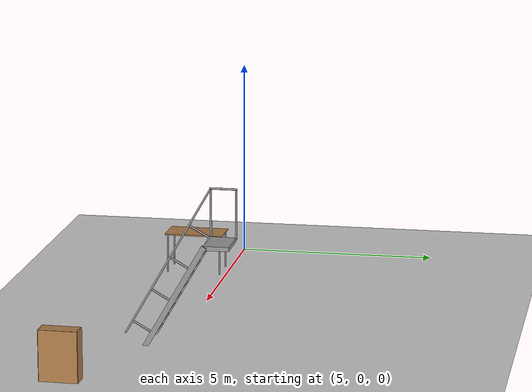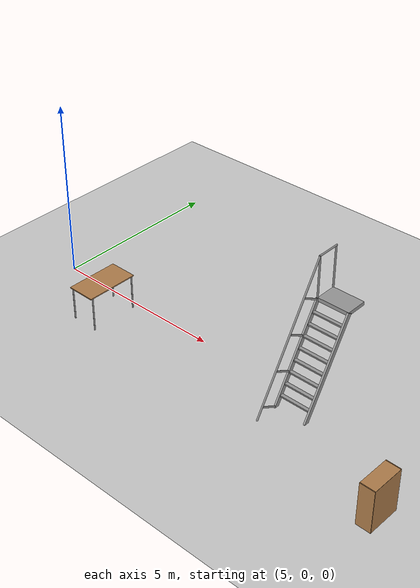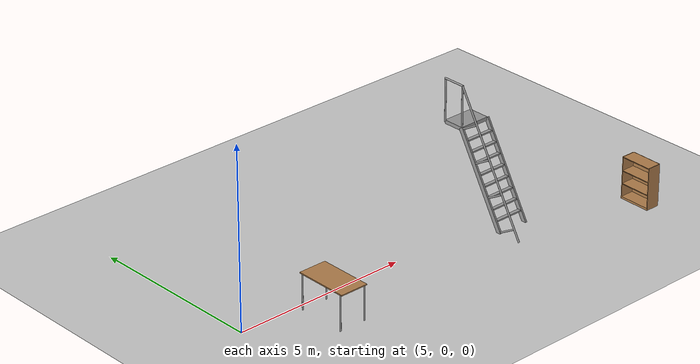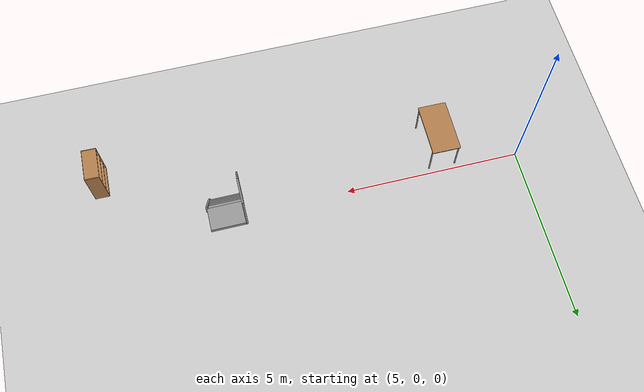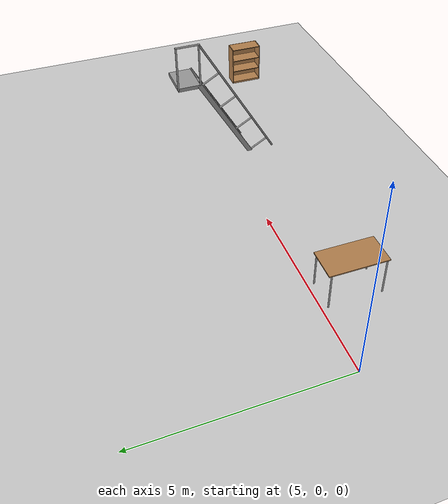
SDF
<sdf version="1.6">
 <world name="default">
  <model name="ground_plane">
   <static>1</static>
   <link name="link">
    <collision name="collision">
     <geometry><plane><normal>0 0 1</normal><size>100 100</size></plane></geometry>
     <surface><friction><ode><mu>100</mu><mu2>50</mu2></ode></friction></surface>
    </collision>
    <visual name="visual">
     <cast_shadows>0</cast_shadows>
     <geometry><plane><normal>0 0 1</normal><size>100 100</size></plane></geometry>
     <material>
      <script><uri>file://media/materials/scripts/gazebo.material</uri><name>Gazebo/Grey</name></script>
     </material>
    </visual>
   </link>
  </model>
  <model name="ladder_60deg_1rails">
   <static>1</static>
   <link name="step0">
    <pose>0 0.15396 0.266667 0 -0 0</pose>
    <inertial>
     <mass>9.75482</mass>
     <inertia>
      <ixx>0.00957124</ixx>
      <iyy>0.65963</iyy>
      <izz>0.666842</izz>
      <ixy>0</ixy>
      <ixz>0</ixz>
      <iyz>0</iyz>
     </inertia>
    </inertial>
    <collision name="collision"><geometry><box><size>0.9 0.1016 0.0381</size></box></geometry></collision>
    <visual name="visual">
     <geometry><box><size>0.9 0.1016 0.0381</size></box></geometry>
     <material>
      <script><uri>file://media/materials/scripts/gazebo.material</uri><name>Gazebo/Grey</name></script>
     </material>
    </visual>
   </link>
   <link name="step1">
    <pose>0 0.30792 0.533333 0 -0 0</pose>
    <inertial>
     <mass>9.75482</mass>
     <inertia>
      <ixx>0.00957124</ixx>
      <iyy>0.65963</iyy>
      <izz>0.666842</izz>
      <ixy>0</ixy>
      <ixz>0</ixz>
      <iyz>0</iyz>
     </inertia>
    </inertial>
    <collision name="collision"><geometry><box><size>0.9 0.1016 0.0381</size></box></geometry></collision>
    <visual name="visual">
     <geometry><box><size>0.9 0.1016 0.0381</size></box></geometry>
     <material>
      <script><uri>file://media/materials/scripts/gazebo.material</uri><name>Gazebo/Grey</name></script>
     </material>
    </visual>
   </link>
   <link name="step2">
    <pose>0 0.46188 0.8 0 -0 0</pose>
    <inertial>
     <mass>9.75482</mass>
     <inertia>
      <ixx>0.00957124</ixx>
      <iyy>0.65963</iyy>
      <izz>0.666842</izz>
      <ixy>0</ixy>
      <ixz>0</ixz>
      <iyz>0</iyz>
     </inertia>
    </inertial>
    <collision name="collision"><geometry><box><size>0.9 0.1016 0.0381</size></box></geometry></collision>
    <visual name="visual">
     <geometry><box><size>0.9 0.1016 0.0381</size></box></geometry>
     <material>
      <script><uri>file://media/materials/scripts/gazebo.material</uri><name>Gazebo/Grey</name></script>
     </material>
    </visual>
   </link>
   <link name="step3">
    <pose>0 0.61584 1.06667 0 -0 0</pose>
    <inertial>
     <mass>9.75482</mass>
     <inertia>
      <ixx>0.00957124</ixx>
      <iyy>0.65963</iyy>
      <izz>0.666842</izz>
      <ixy>0</ixy>
      <ixz>0</ixz>
      <iyz>0</iyz>
     </inertia>
    </inertial>
    <collision name="collision"><geometry><box><size>0.9 0.1016 0.0381</size></box></geometry></collision>
    <visual name="visual">
     <geometry><box><size>0.9 0.1016 0.0381</size></box></geometry>
     <material>
      <script><uri>file://media/materials/scripts/gazebo.material</uri><name>Gazebo/Grey</name></script>
     </material>
    </visual>
   </link>
   <link name="step4">
    <pose>0 0.7698 1.33333 0 -0 0</pose>
    <inertial>
     <mass>9.75482</mass>
     <inertia>
      <ixx>0.00957124</ixx>
      <iyy>0.65963</iyy>
      <izz>0.666842</izz>
      <ixy>0</ixy>
      <ixz>0</ixz>
      <iyz>0</iyz>
     </inertia>
    </inertial>
    <collision name="collision"><geometry><box><size>0.9 0.1016 0.0381</size></box></geometry></collision>
    <visual name="visual">
     <geometry><box><size>0.9 0.1016 0.0381</size></box></geometry>
     <material>
      <script><uri>file://media/materials/scripts/gazebo.material</uri><name>Gazebo/Grey</name></script>
     </material>
    </visual>
   </link>
   <link name="step5">
    <pose>0 0.92376 1.6 0 -0 0</pose>
    <inertial>
     <mass>9.75482</mass>
     <inertia>
      <ixx>0.00957124</ixx>
      <iyy>0.65963</iyy>
      <izz>0.666842</izz>
      <ixy>0</ixy>
      <ixz>0</ixz>
      <iyz>0</iyz>
     </inertia>
    </inertial>
    <collision name="collision"><geometry><box><size>0.9 0.1016 0.0381</size></box></geometry></collision>
    <visual name="visual">
     <geometry><box><size>0.9 0.1016 0.0381</size></box></geometry>
     <material>
      <script><uri>file://media/materials/scripts/gazebo.material</uri><name>Gazebo/Grey</name></script>
     </material>
    </visual>
   </link>
   <link name="step6">
    <pose>0 1.07772 1.86667 0 -0 0</pose>
    <inertial>
     <mass>9.75482</mass>
     <inertia>
      <ixx>0.00957124</ixx>
      <iyy>0.65963</iyy>
      <izz>0.666842</izz>
      <ixy>0</ixy>
      <ixz>0</ixz>
      <iyz>0</iyz>
     </inertia>
    </inertial>
    <collision name="collision"><geometry><box><size>0.9 0.1016 0.0381</size></box></geometry></collision>
    <visual name="visual">
     <geometry><box><size>0.9 0.1016 0.0381</size></box></geometry>
     <material>
      <script><uri>file://media/materials/scripts/gazebo.material</uri><name>Gazebo/Grey</name></script>
     </material>
    </visual>
   </link>
   <link name="step7">
    <pose>0 1.23168 2.13333 0 -0 0</pose>
    <inertial>
     <mass>9.75482</mass>
     <inertia>
      <ixx>0.00957124</ixx>
      <iyy>0.65963</iyy>
      <izz>0.666842</izz>
      <ixy>0</ixy>
      <ixz>0</ixz>
      <iyz>0</iyz>
     </inertia>
    </inertial>
    <collision name="collision"><geometry><box><size>0.9 0.1016 0.0381</size></box></geometry></collision>
    <visual name="visual">
     <geometry><box><size>0.9 0.1016 0.0381</size></box></geometry>
     <material>
      <script><uri>file://media/materials/scripts/gazebo.material</uri><name>Gazebo/Grey</name></script>
     </material>
    </visual>
   </link>
   <link name="landing">
    <pose>0 1.68564 2.4 0 -0 0</pose>
    <inertial>
     <mass>57.6072</mass>
     <inertia><ixx>1.73518</ixx><iyy>3.89545</iyy><izz>5.6167</izz><ixy>0</ixy><ixz>0</ixz><iyz>0</iyz></inertia>
    </inertial>
    <collision name="collision"><geometry><box><size>0.9 0.6 0.1016</size></box></geometry></collision>
    <visual name="visual">
     <geometry><box><size>0.9 0.6 0.1016</size></box></geometry>
     <material>
      <script><uri>file://media/materials/scripts/gazebo.material</uri><name>Gazebo/Grey</name></script>
     </material>
    </visual>
   </link>
   <link name="left_side_wall">
    <pose>-0.45 0.69282 1.2 1.0472 -0 0</pose>
    <collision name="collision"><geometry><box><size>0.0508 2.85128 0.13</size></box></geometry></collision>
    <visual name="visual">
     <geometry><box><size>0.0508 2.85128 0.13</size></box></geometry>
     <material>
      <script><uri>file://media/materials/scripts/gazebo.material</uri><name>Gazebo/Grey</name></script>
     </material>
    </visual>
   </link>
   <link name="right_side_wall">
    <pose>0.45 0.69282 1.2 1.0472 -0 0</pose>
    <collision name="collision"><geometry><box><size>0.0508 2.85128 0.13</size></box></geometry></collision>
    <visual name="visual">
     <geometry><box><size>0.0508 2.85128 0.13</size></box></geometry>
     <material>
      <script><uri>file://media/materials/scripts/gazebo.material</uri><name>Gazebo/Grey</name></script>
     </material>
    </visual>
   </link>
   <link name="left_railing_long">
    <pose>-0.45 0.34282 1.80622 -0.523599 0 0</pose>
    <collision name="collision">
     <geometry><cylinder><radius>0.02413</radius><length>4.17128</length></cylinder></geometry>
    </collision>
    <visual name="visual">
     <geometry><cylinder><radius>0.02413</radius><length>4.17128</length></cylinder></geometry>
     <material>
      <script><uri>file://media/materials/scripts/gazebo.material</uri><name>Gazebo/Grey</name></script>
     </material>
    </visual>
   </link>
   <link name="left_railing_upright0">
    <pose>-0.45 -0.274963 0.15875 1.0472 -0 0</pose>
    <collision name="collision">
     <geometry><cylinder><radius>0.02413</radius><length>0.541218</length></cylinder></geometry>
    </collision>
    <visual name="visual">
     <geometry><cylinder><radius>0.02413</radius><length>0.541218</length></cylinder></geometry>
     <material>
      <script><uri>file://media/materials/scripts/gazebo.material</uri><name>Gazebo/Grey</name></script>
     </material>
    </visual>
   </link>
   <link name="left_railing_upright1">
    <pose>-0.45 0.186917 0.95875 1.0472 -0 0</pose>
    <collision name="collision">
     <geometry><cylinder><radius>0.02413</radius><length>0.541218</length></cylinder></geometry>
    </collision>
    <visual name="visual">
     <geometry><cylinder><radius>0.02413</radius><length>0.541218</length></cylinder></geometry>
     <material>
      <script><uri>file://media/materials/scripts/gazebo.material</uri><name>Gazebo/Grey</name></script>
     </material>
    </visual>
   </link>
   <link name="left_railing_upright2">
    <pose>-0.45 0.648797 1.75875 1.0472 -0 0</pose>
    <collision name="collision">
     <geometry><cylinder><radius>0.02413</radius><length>0.541218</length></cylinder></geometry>
    </collision>
    <visual name="visual">
     <geometry><cylinder><radius>0.02413</radius><length>0.541218</length></cylinder></geometry>
     <material>
      <script><uri>file://media/materials/scripts/gazebo.material</uri><name>Gazebo/Grey</name></script>
     </material>
    </visual>
   </link>
   <link name="left_railing_upright3">
    <pose>-0.45 1.11068 2.55875 1.0472 -0 0</pose>
    <collision name="collision">
     <geometry><cylinder><radius>0.02413</radius><length>0.541218</length></cylinder></geometry>
    </collision>
    <visual name="visual">
     <geometry><cylinder><radius>0.02413</radius><length>0.541218</length></cylinder></geometry>
     <material>
      <script><uri>file://media/materials/scripts/gazebo.material</uri><name>Gazebo/Grey</name></script>
     </material>
    </visual>
   </link>
   <link name="left_railing_landing_top">
    <pose>-0.45 1.68564 3.61244 1.5708 -0 0</pose>
    <collision name="collision">
     <geometry><cylinder><radius>0.02413</radius><length>0.64826</length></cylinder></geometry>
    </collision>
    <visual name="visual">
     <geometry><cylinder><radius>0.02413</radius><length>0.64826</length></cylinder></geometry>
     <material>
      <script><uri>file://media/materials/scripts/gazebo.material</uri><name>Gazebo/Grey</name></script>
     </material>
    </visual>
   </link>
   <link name="left_railing_landing_upright_0">
    <pose>-0.45 1.38564 3.00622 0 -0 0</pose>
    <collision name="collision">
     <geometry><cylinder><radius>0.02413</radius><length>1.21244</length></cylinder></geometry>
    </collision>
    <visual name="visual">
     <geometry><cylinder><radius>0.02413</radius><length>1.21244</length></cylinder></geometry>
     <material>
      <script><uri>file://media/materials/scripts/gazebo.material</uri><name>Gazebo/Grey</name></script>
     </material>
    </visual>
   </link>
   <link name="left_railing_landing_upright_1">
    <pose>-0.45 1.98564 3.00622 0 -0 0</pose>
    <collision name="collision">
     <geometry><cylinder><radius>0.02413</radius><length>1.21244</length></cylinder></geometry>
    </collision>
    <visual name="visual">
     <geometry><cylinder><radius>0.02413</radius><length>1.21244</length></cylinder></geometry>
     <material>
      <script><uri>file://media/materials/scripts/gazebo.material</uri><name>Gazebo/Grey</name></script>
     </material>
    </visual>
   </link>
   <pose>13.3934 -0.664271 0 0 -0 0</pose>
  </model>
  <model name="table">
   <static>1</static>
   <link name="link">
    <collision name="surface">
     <pose>0 0 1 0 -0 0</pose>
     <geometry><box><size>1.5 0.8 0.03</size></box></geometry>
     <surface><friction><ode><mu>0.6</mu><mu2>0.6</mu2></ode></friction></surface>
    </collision>
    <visual name="visual1">
     <pose>0 0 1 0 -0 0</pose>
     <geometry><box><size>1.5 0.8 0.03</size></box></geometry>
     <material>
      <script><uri>file://media/materials/scripts/gazebo.material</uri><name>Gazebo/Wood</name></script>
     </material>
    </visual>
    <collision name="front_left_leg">
     <pose>0.68 0.38 0.5 0 -0 0</pose>
     <geometry><cylinder><radius>0.02</radius><length>1</length></cylinder></geometry>
    </collision>
    <visual name="front_left_leg">
     <pose>0.68 0.38 0.5 0 -0 0</pose>
     <geometry><cylinder><radius>0.02</radius><length>1</length></cylinder></geometry>
     <material>
      <script><uri>file://media/materials/scripts/gazebo.material</uri><name>Gazebo/Grey</name></script>
     </material>
    </visual>
    <collision name="front_right_leg">
     <pose>0.68 -0.38 0.5 0 -0 0</pose>
     <geometry><cylinder><radius>0.02</radius><length>1</length></cylinder></geometry>
    </collision>
    <visual name="front_right_leg">
     <pose>0.68 -0.38 0.5 0 -0 0</pose>
     <geometry><cylinder><radius>0.02</radius><length>1</length></cylinder></geometry>
     <material>
      <script><uri>file://media/materials/scripts/gazebo.material</uri><name>Gazebo/Grey</name></script>
     </material>
    </visual>
    <collision name="back_right_leg">
     <pose>-0.68 -0.38 0.5 0 -0 0</pose>
     <geometry><cylinder><radius>0.02</radius><length>1</length></cylinder></geometry>
    </collision>
    <visual name="back_right_leg">
     <pose>-0.68 -0.38 0.5 0 -0 0</pose>
     <geometry><cylinder><radius>0.02</radius><length>1</length></cylinder></geometry>
     <material>
      <script><uri>file://media/materials/scripts/gazebo.material</uri><name>Gazebo/Grey</name></script>
     </material>
    </visual>
    <collision name="back_left_leg">
     <pose>-0.68 0.38 0.5 0 -0 0</pose>
     <geometry><cylinder><radius>0.02</radius><length>1</length></cylinder></geometry>
    </collision>
    <visual name="back_left_leg">
     <pose>-0.68 0.38 0.5 0 -0 0</pose>
     <geometry><cylinder><radius>0.02</radius><length>1</length></cylinder></geometry>
     <material>
      <script><uri>file://media/materials/scripts/gazebo.material</uri><name>Gazebo/Grey</name></script>
     </material>
    </visual>
   </link>
   <pose>7.15801 -0.851123 0 0 -0 1.56283</pose>
  </model>
  <model name="bookshelf_0">
   <static>1</static>
   <link name="link">
    <inertial><mass>1</mass></inertial>
    <collision name="back">
     <pose>0 0.005 0.6 0 -0 0</pose>
     <geometry><box><size>0.9 0.01 1.2</size></box></geometry>
    </collision>
    <visual name="visual1">
     <pose>0 0.005 0.6 0 -0 0</pose>
     <geometry><box><size>0.9 0.01 1.2</size></box></geometry>
     <material>
      <script><uri>file://media/materials/scripts/gazebo.material</uri><name>Gazebo/Wood</name></script>
     </material>
    </visual>
    <collision name="left_side">
     <pose>0.45 -0.195 0.6 0 -0 0</pose>
     <geometry><box><size>0.02 0.4 1.2</size></box></geometry>
    </collision>
    <visual name="visual2">
     <pose>0.45 -0.195 0.6 0 -0 0</pose>
     <geometry><box><size>0.02 0.4 1.2</size></box></geometry>
     <material>
      <script><uri>file://media/materials/scripts/gazebo.material</uri><name>Gazebo/Wood</name></script>
     </material>
    </visual>
    <collision name="right_side">
     <pose>-0.45 -0.195 0.6 0 -0 0</pose>
     <geometry><box><size>0.02 0.4 1.2</size></box></geometry>
    </collision>
    <visual name="visual3">
     <pose>-0.45 -0.195 0.6 0 -0 0</pose>
     <geometry><box><size>0.02 0.4 1.2</size></box></geometry>
     <material>
      <script><uri>file://media/materials/scripts/gazebo.material</uri><name>Gazebo/Wood</name></script>
     </material>
    </visual>
    <collision name="bottom">
     <pose>0 -0.195 0.03 0 -0 0</pose>
     <geometry><box><size>0.88 0.4 0.06</size></box></geometry>
    </collision>
    <visual name="visual4">
     <pose>0 -0.195 0.03 0 -0 0</pose>
     <geometry><box><size>0.88 0.4 0.06</size></box></geometry>
     <material>
      <script><uri>file://media/materials/scripts/gazebo.material</uri><name>Gazebo/Wood</name></script>
     </material>
    </visual>
    <collision name="top">
     <pose>0 -0.195 1.19 0 -0 0</pose>
     <geometry><box><size>0.88 0.4 0.02</size></box></geometry>
    </collision>
    <visual name="visual5">
     <pose>0 -0.195 1.19 0 -0 0</pose>
     <geometry><box><size>0.88 0.4 0.02</size></box></geometry>
     <material>
      <script><uri>file://media/materials/scripts/gazebo.material</uri><name>Gazebo/Wood</name></script>
     </material>
    </visual>
    <collision name="low_shelf">
     <pose>0 -0.195 0.43 0 -0 0</pose>
     <geometry><box><size>0.88 0.4 0.02</size></box></geometry>
    </collision>
    <visual name="visual6">
     <pose>0 -0.195 0.43 0 -0 0</pose>
     <geometry><box><size>0.88 0.4 0.02</size></box></geometry>
     <material>
      <script><uri>file://media/materials/scripts/gazebo.material</uri><name>Gazebo/Wood</name></script>
     </material>
    </visual>
    <collision name="high_shelf">
     <pose>0 -0.195 0.8 0 -0 0</pose>
     <geometry><box><size>0.88 0.4 0.02</size></box></geometry>
    </collision>
    <visual name="visual7">
     <pose>0 -0.195 0.8 0 -0 0</pose>
     <geometry><box><size>0.88 0.4 0.02</size></box></geometry>
     <material>
      <script><uri>file://media/materials/scripts/gazebo.material</uri><name>Gazebo/Wood</name></script>
     </material>
    </visual>
   </link>
   <pose>16.9428 -1.95253 0 0 0 -1.58786</pose>
  </model>
 </world>
</sdf>
